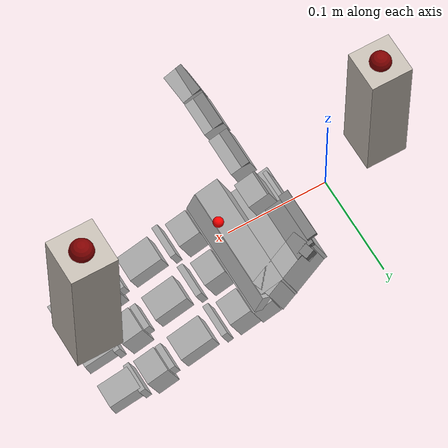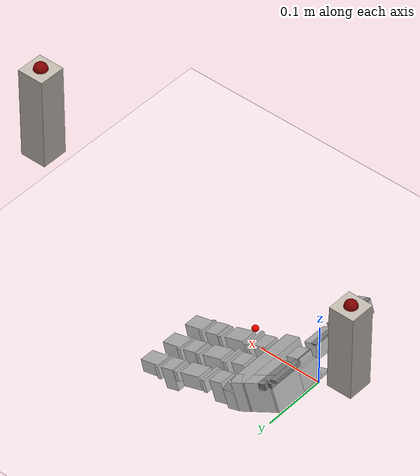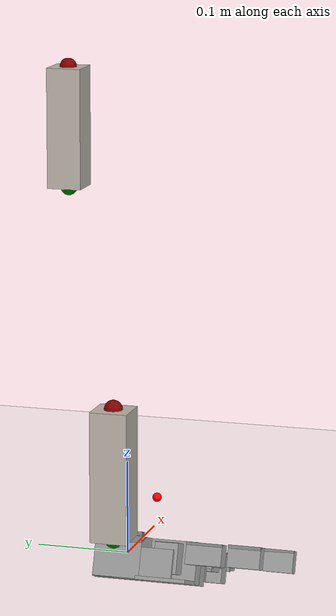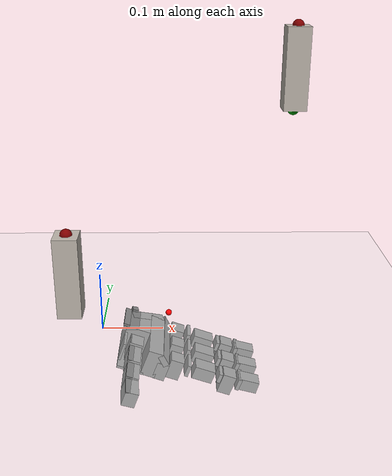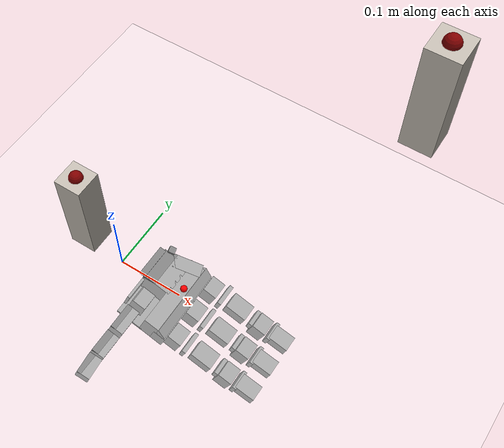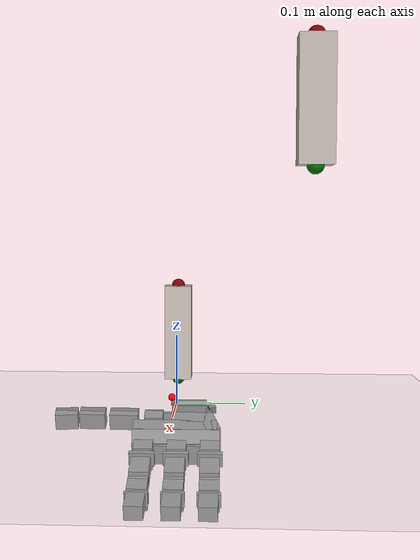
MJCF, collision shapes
<mujoco model="leap_scene">
  <include file="leap_rh_mjx.xml"/>
  <include file="../screw_driver/screw_driver.xml"/>

  <statistic center="0.15 0 0" extent="0.4" meansize="0.01"/>
  <size nuserdata="1"/>

  <visual>
    <headlight diffuse=".8 .8 .8" ambient=".2 .2 .2" specular="1 1 1"/>
    <rgba force="1 0 0 1"/>
    <global azimuth="120" elevation="-20"/>
    <map force="0.01" stiffness="500"/>
    <scale forcewidth="0.1" contactwidth="0.5" contactheight="0.2"/>
    <quality shadowsize="8192"/>
  </visual>

  <asset>
    <texture type="skybox" builtin="gradient" rgb1="1 1 1" rgb2="1 1 1" width="800" height="800"/>
    <texture type="2d" name="groundplane" builtin="checker" mark="edge" rgb1="1 1 1" rgb2="1 1 1" markrgb="0 0 0"
             width="300" height="300"/>
    <material name="groundplane" texture="groundplane" texuniform="true" texrepeat="5 5" reflectance="0"/>
  </asset>

  <default>
    <default class="screw_driver">
      <geom friction="0.3 0.05 0.01" conaffinity="2"/>
    </default>
  </default>

  <worldbody>
    <camera name="side" pos="-0.183 0.396 0.296" xyaxes="-0.783 -0.622 -0.000 0.332 -0.419 0.845"/>
    <geom name="floor" pos="0 0 0" size="0 0 0.01" type="plane" material="groundplane" contype="1" conaffinity="1"/>
    <body name="target" mocap="true" pos="0.325 0.17 0.4">
      <geom type="box" size=".02 .02 .07" mass=".108" material="oriented_screw_driver" contype="0" conaffinity="0"
            group="2"/>
      <site name="target_head_a" rgba="0.5 0 0 1" type="sphere" size="0.01" pos="0 0 0.07"/>
      <site name="target_head_b" rgba="0 0.5 0 1" type="sphere" size="0.01" pos="0 0 -0.07"/>
    </body>
  </worldbody>

  <sensor>
    <!-- screw_driver. -->
    <framepos name="screw_driver_position" objtype="body" objname="screw_driver"/>
    <contact name="screw_driver_contact_with_palm" geom1="screw_driver" geom2="palm_visual" data="found force"/>
    <contact name="screw_driver_contact_with_th_tip" geom1="screw_driver" geom2="th_tip" data="found force"/>
    <contact name="screw_driver_contact_with_if_tip" geom1="screw_driver" geom2="if_tip" data="found force"/>
    <contact name="screw_driver_contact_with_mf_tip" geom1="screw_driver" geom2="mf_tip" data="found force"/>
    <contact name="screw_driver_contact_with_rf_tip" geom1="screw_driver" geom2="rf_tip" data="found force"/>
    <framepos name="screw_driver_distance_to_grasp" objtype="body" objname="screw_driver" reftype="site"
              refname="grasp_site"/>
    <framepos name="screw_driver_distance_to_target" objtype="body" objname="screw_driver" reftype="body"
              refname="target"/>
    <framequat name="screw_driver_orientation" objtype="body" objname="screw_driver"/>
    <framequat name="screw_driver_orientation_from_target" objtype="body" objname="screw_driver" reftype="body"
               refname="target"/>
    <framepos name="grasp_distance_from_target" objtype="site" objname="grasp_site" reftype="body" refname="target"/>
    <framelinvel name="screw_driver_linear_vel" objtype="body" objname="screw_driver"/>
    <frameangvel name="screw_driver_angular_vel" objtype="body" objname="screw_driver"/>
    <frameangacc name="screw_driver_angular_acc" objtype="body" objname="screw_driver"/>
    <framezaxis name="screw_driver_upvector" objtype="body" objname="screw_driver"/>

    <framepos name="screw_driver_head_distance_to_target_head_a" objtype="site" objname="screw_driver_head_a"
              reftype="site" refname="target_head_a"/>

    <!-- hand. -->
    <framepos name="palm_position" objtype="site" objname="grasp_site"/>
    <framepos name="th_tip_distance_to_screw_driver" objtype="site" objname="th_tip" reftype="body"
              refname="screw_driver"/>
    <framepos name="if_tip_distance_to_screw_driver" objtype="site" objname="if_tip" reftype="body"
              refname="screw_driver"/>
    <framepos name="mf_tip_distance_to_screw_driver" objtype="site" objname="mf_tip" reftype="body"
              refname="screw_driver"/>
    <framepos name="rf_tip_distance_to_screw_driver" objtype="site" objname="rf_tip" reftype="body"
              refname="screw_driver"/>

    <!-- goal. -->
    <framequat name="screw_driver_goal_orientation" objtype="body" objname="target"/>
    <framezaxis name="screw_driver_goal_upvector" objtype="body" objname="target"/>
  </sensor>

</mujoco>

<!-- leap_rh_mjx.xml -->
<mujoco model="leap_rh_mjx">
  <compiler angle="radian" autolimits="true" assetdir="assets"/>

  <option timestep="0.01" integrator="Euler" iterations="5" ls_iterations="8">
    <flag eulerdamp="disable"/>
  </option>

  <custom>
    <numeric data="30" name="max_contact_points"/>
    <numeric data="12" name="max_geom_pairs"/>
  </custom>

  <asset>
    <material name="black" rgba="0.2 0.2 0.2 1"/>
    <material name="gray" rgba="0.5 0.5 0.5 1"/>
    <mesh name="leap_mount" file="leap_mount.obj"/>

    <mesh name="palm" file="palm_right.obj"/>
    <mesh name="base" file="base.obj"/>
    <mesh name="proximal" file="proximal.obj"/>
    <mesh name="medial" file="medial.obj"/>
    <mesh name="distal" file="distal.obj"/>
    <mesh name="tip" file="tip.obj"/>
    <mesh name="thumb_base" file="thumb_base.obj"/>
    <mesh name="thumb_proximal" file="thumb_proximal.obj"/>
    <mesh name="thumb_distal" file="thumb_distal.obj"/>
    <mesh name="thumb_tip" file="thumb_tip.obj"/>
  </asset>

  <default>
    <default class="leap_rh">
      <geom group="3" friction="0.2" solref="0.02 1.5" solimp="0.9 0.99 0.001"/>
      <default class="visual">
        <geom group="2" type="mesh" contype="0" conaffinity="0" density="0" material="black"/>
      </default>
      <default class="tip">
        <geom size="0.01 0.012 0.016" pos="-0.0012969 -0.0335524 0.0145207"
              quat="0.703552 0.709596 -0.0292107 -0.0252203" type="box" friction="0.7 0.05 0.0002"
              rgba=".5 .5 .5 .3"/>
      </default>
      <default class="thumb_tip">
        <geom size="0.01 0.012 0.016" pos="-0.00127744 -0.0455619 -0.0144774"
              quat="0.708101 0.705072 -0.0294902 -0.024426" type="box" friction="0.7 0.05 0.0002"
              rgba=".5 .5 .5 .3"/>
      </default>

      <position kp="3.0" inheritrange="1"/>
      <!-- armature = rotor inertia * gear ratio^2 = 1.7 * 1e-8 * 288*288 = 0.00149376 -->
      <!-- max torque = 0.2196 = 600/1000*0.366 -->
      <!-- frictionloss = rough guess, small ish value -->
      <joint axis="0 0 -1" damping="0.2" armature="0.00149376" actuatorfrcrange="-0.2196 0.2196"
             frictionloss="0.02"/>

      <default class="mcp">
        <joint range="-0.314 2.23"/>
      </default>
      <default class="rot">
        <joint range="-1.047 1.047"/>
      </default>
      <default class="pip">
        <joint range="-0.506 1.885"/>
      </default>
      <default class="dip">
        <joint range="-0.366 2.042"/>
      </default>
      <default class="thumb_cmc">
        <joint range="-0.349 2.094"/>
      </default>
      <default class="thumb_axl">
        <joint range="-0.349 2.094"/>
      </default>
      <default class="thumb_mcp">
        <joint range="-0.47 2.443"/>
      </default>
      <default class="thumb_ipl">
        <joint range="-1.34 1.88"/>
      </default>

    </default>
  </default>

  <contact>
    <!-- filter the palm from all other finger bodies except the tips -->
    <exclude body1="palm" body2="if_bs"/>
    <exclude body1="palm" body2="mf_bs"/>
    <exclude body1="palm" body2="rf_bs"/>
    <exclude body1="palm" body2="th_mp"/>

    <exclude body1="palm" body2="if_px"/>
    <exclude body1="palm" body2="mf_px"/>
    <exclude body1="palm" body2="rf_px"/>
    <exclude body1="palm" body2="th_bs"/>

    <exclude body1="palm" body2="if_md"/>
    <exclude body1="palm" body2="mf_md"/>
    <exclude body1="palm" body2="rf_md"/>
    <exclude body1="palm" body2="th_px"/>

    <!-- filter the mount from all finger bodies except the tips -->
    <exclude body1="leap_mount" body2="if_bs"/>
    <exclude body1="leap_mount" body2="mf_bs"/>
    <exclude body1="leap_mount" body2="rf_bs"/>
    <exclude body1="leap_mount" body2="th_mp"/>

    <exclude body1="leap_mount" body2="if_px"/>
    <exclude body1="leap_mount" body2="mf_px"/>
    <exclude body1="leap_mount" body2="rf_px"/>
    <exclude body1="leap_mount" body2="th_bs"/>

    <exclude body1="leap_mount" body2="if_md"/>
    <exclude body1="leap_mount" body2="mf_md"/>
    <exclude body1="leap_mount" body2="rf_md"/>
    <exclude body1="leap_mount" body2="th_px"/>

    <!-- none of the base fingertip geoms can touch each other -->
    <exclude body1="if_bs" body2="mf_bs"/>
    <exclude body1="if_bs" body2="rf_bs"/>
    <exclude body1="mf_bs" body2="rf_bs"/>

    <exclude body1="th_mp" body2="if_bs"/>
    <exclude body1="th_mp" body2="mf_bs"/>
    <exclude body1="th_mp" body2="rf_bs"/>
  </contact>

  <worldbody>
    <light name="spotlight" mode="targetbodycom" target="palm" pos="3 0 4"/>
    <body name="leap_mount" pos="0 0 0" quat="1 0 0 0" childclass="leap_rh">
      <geom name="leap_mount_visual" pos="0 0 0" quat="1 0 0 0" class="visual" mesh="leap_mount"/>
      <geom name="leap_mount_collision_0" size="0.002 0.025 0.005" pos="0.0405 0.02 0.009"
            quat="0.57346234 0 0.81923192 0" type="box"/>
      <geom name="leap_mount_collision_1" size="0.005 0.005 0.005" pos="0.05 0.053 0.002"
            quat="0.4987168 0.64994038 -0.34910175 0.45495826" type="box"/>
      <site name="grasp_site" pos="0.11 0.0 0.03" rgba="1 0 0 1"/>
      <body name="palm" pos="0.124 -0.0305 -0.06045" quat="0 1 0 -0.175">
        <inertial pos="-0.049542 -0.042914 -0.010227" quat="0.565586 0.427629 -0.574956 0.408254" mass="0.237"
                  diaginertia="0.000407345 0.000304759 0.000180736"/>
        <geom name="palm_visual" pos="-0.02 0.02575 -0.0347" quat="1 0 0 0" class="visual" mesh="palm"/>
        <geom name="palm_collision_1" size="0.011 0.013 0.017" pos="-0.009 0.008 -0.011" type="box"/>
        <geom name="palm_collision_2" size="0.011 0.013 0.017" pos="-0.009 -0.037 -0.011" type="box"/>
        <geom name="palm_collision_3" size="0.011 0.013 0.017" pos="-0.009 -0.082 -0.011" type="box"/>
        <geom name="palm_collision_4" size="0.029 0.01 0.023" pos="-0.066 -0.078 -0.0115"
              quat="0.989016 0 0 -0.147806" type="box"/>
        <geom name="palm_collision_5" size="0.01 0.06 0.015" pos="-0.03 -0.035 -0.003" type="box"/>
        <geom name="palm_collision_6" size="0.005 0.06 0.01" pos="-0.032 -0.035 -0.024"
              quat="0.923956 0 0.382499 0" type="box"/>
        <geom name="palm_collision_7" size="0.012 0.058 0.023" pos="-0.048 -0.033 -0.0115" type="box"/>
        <geom name="palm_collision_8" size="0.022 0.026 0.023" pos="-0.078 -0.053 -0.0115" type="box"/>
        <geom name="palm_collision_9" size="0.002 0.018 0.017" pos="-0.098 -0.009 -0.006" type="box"/>
        <geom name="palm_collision_10" size="0.022 0.028 0.002" pos="-0.078 -0.003 0.01" type="box"/>
        <body name="if_bs" pos="-0.007 0.023 -0.0187" quat="0.5 0.5 0.5 -0.5">
          <inertial pos="-0.022516 0.033882 0.016359" quat="0.388092 0.677951 -0.247713 0.573067" mass="0.044"
                    diaginertia="1.74972e-05 1.61504e-05 7.21342e-06"/>
          <joint name="if_mcp" class="mcp"/>
          <geom name="if_bs_visual" pos="0.0084 0.0077 0.01465" quat="1 0 0 0" class="visual" mesh="base"/>
          <geom name="if_bs_collision" size="0.01 0.003 0.017" pos="0 0.018 0.0147" type="box"/>
          <body name="if_px" pos="-0.0122 0.0381 0.0145" quat="0.500003 -0.5 -0.499997 0.5">
            <inertial pos="0.0075 -0.0002 -0.011" quat="0 0.707107 0 0.707107" mass="0.032"
                      diaginertia="4.8853e-06 4.3733e-06 3.0933e-06"/>
            <joint name="if_rot" class="rot"/>
            <geom name="if_px_visual" pos="0.0096 0.0002 0.0007" quat="0.500003 -0.5 -0.5 -0.499997"
                  class="visual"
                  mesh="proximal"/>
            <geom name="if_px_collision" size="0.017 0.013 0.011" pos="0.0075 -0.0002 -0.011" type="box"/>

            <body name="if_md" pos="0.015 0.0143 -0.013" quat="0.500003 0.5 -0.5 0.499997">
              <inertial pos="0.0054215 -0.029148 0.015" quat="0.687228 0.687228 0.166487 0.166487"
                        mass="0.037"
                        diaginertia="8.28004e-06 8.1598e-06 5.39516e-06"/>
              <joint name="if_pip" class="pip"/>
              <geom name="if_md_visual" pos="0.0211 -0.0084 0.0097" quat="2.67949e-08 -1 0 0"
                    class="visual"
                    mesh="medial"/>
              <geom name="if_md_collision_1" size="0.008 0.003 0.013" pos="0 -0.02 0.015" type="box"/>
              <geom name="if_md_collision_2" size="0.017 0.011 0.013" pos="0.0075 -0.035 0.015"
                    type="box"/>
              <body name="if_ds" pos="0 -0.0361 0.0002">
                <inertial pos="-0.0008794 -0.027019 0.014594"
                          quat="0.702905 0.710643 -0.0212937 -0.0214203"
                          mass="0.016" diaginertia="3.71863e-06 3.02396e-06 1.6518e-06"/>
                <joint name="if_dip" class="dip"/>
                <geom name="if_ds_visual" pos="0.0132 -0.0061 0.0144" quat="2.67949e-08 1 0 0"
                      class="visual"
                      mesh="distal"/>
                <geom name="if_ds_collision" size="0.01 0.003 0.015" pos="0 -0.017 0.015" type="box"/>
                <geom name="if_tip" class="tip"/>
                <geom type="mesh" mesh="tip" class="visual" material="gray"/>
                <site name="if_tip" pos="0 -0.05 0.015" group="4"/>
              </body>
            </body>
          </body>
        </body>
        <body name="mf_bs" pos="-0.0071 -0.0224 -0.0187" quat="0.500003 0.5 0.5 -0.499997">
          <inertial pos="-0.022516 0.033882 0.016359" quat="0.388092 0.677951 -0.247713 0.573067" mass="0.044"
                    diaginertia="1.74972e-05 1.61504e-05 7.21342e-06"/>
          <joint name="mf_mcp" class="mcp"/>
          <geom name="mf_bs_visual" pos="0.0084 0.0077 0.01465" quat="1 0 0 0" class="visual" mesh="base"/>
          <geom name="mf_bs_collision" size="0.01 0.003 0.017" pos="0 0.018 0.0147" type="box"/>
          <body name="mf_px" pos="-0.0122 0.0381 0.0145" quat="0.500003 -0.5 -0.499997 0.5">
            <inertial pos="0.0075 -0.0002 -0.011" quat="0 0.707107 0 0.707107" mass="0.032"
                      diaginertia="4.8853e-06 4.3733e-06 3.0933e-06"/>
            <joint name="mf_rot" class="rot"/>
            <geom name="mf_px_visual" pos="0.0096 0.0003 0.0007" quat="0.500003 -0.5 -0.5 -0.499997"
                  class="visual"
                  mesh="proximal"/>
            <geom name="mf_px_collision" size="0.017 0.013 0.011" pos="0.0075 -0.0002 -0.011" type="box"/>
            <body name="mf_md" pos="0.015 0.0143 -0.013" quat="0.500003 0.5 -0.5 0.499997">
              <inertial pos="0.0054215 -0.029148 0.015" quat="0.687228 0.687228 0.166487 0.166487"
                        mass="0.037"
                        diaginertia="8.28004e-06 8.1598e-06 5.39516e-06"/>
              <joint name="mf_pip" class="pip"/>
              <geom name="mf_md_visual" pos="0.0211 -0.0084 0.0097" quat="1.32679e-06 -1 0 0"
                    class="visual"
                    mesh="medial"/>
              <geom name="mf_md_collision_1" size="0.008 0.003 0.013" pos="0 -0.02 0.015" type="box"/>
              <geom name="mf_md_collision_2" size="0.017 0.011 0.013" pos="0.0075 -0.035 0.015"
                    type="box"/>
              <body name="mf_ds" pos="0 -0.0361 0.0002">
                <inertial pos="-0.0008794 -0.027019 0.014594"
                          quat="0.702905 0.710643 -0.0212937 -0.0214203"
                          mass="0.016" diaginertia="3.71863e-06 3.02396e-06 1.6518e-06"/>
                <joint name="mf_dip" class="dip"/>
                <geom name="mf_ds_visual" pos="0.0132 -0.0061 0.0145" quat="1.32679e-06 1 0 0"
                      class="visual"
                      mesh="distal"/>
                <geom name="mf_ds_collision" size="0.01 0.003 0.015" pos="0 -0.017 0.015" type="box"/>
                <geom name="mf_tip" class="tip"/>
                <geom type="mesh" mesh="tip" class="visual" material="gray"/>
                <site name="mf_tip" pos="0 -0.05 0.015" group="4"/>
              </body>
            </body>
          </body>
        </body>
        <body name="rf_bs" pos="-0.00709 -0.0678 -0.0187" quat="0.500003 0.5 0.5 -0.499997">
          <inertial pos="-0.022516 0.033882 0.016359" quat="0.388092 0.677951 -0.247713 0.573067" mass="0.044"
                    diaginertia="1.74972e-05 1.61504e-05 7.21342e-06"/>
          <joint name="rf_mcp" class="mcp"/>
          <geom name="rf_bs_visual" pos="0.0084 0.0077 0.01465" quat="1 0 0 0" class="visual" mesh="base"/>
          <geom name="rf_bs_collision" size="0.01 0.003 0.017" pos="0 0.018 0.0147" type="box"/>
          <body name="rf_px" pos="-0.0122 0.0381 0.0145" quat="0.500003 -0.5 -0.499997 0.5">
            <inertial pos="0.0075 -0.0002 -0.011" quat="0 0.707107 0 0.707107" mass="0.032"
                      diaginertia="4.8853e-06 4.3733e-06 3.0933e-06"/>
            <joint name="rf_rot" class="rot"/>
            <geom name="rf_px_visual" pos="0.0096 0.0003 0.0007" quat="0.500003 -0.5 -0.5 -0.499997"
                  class="visual"
                  mesh="proximal"/>
            <geom name="rf_px_collision" size="0.017 0.013 0.011" pos="0.0075 -0.0002 -0.011" type="box"/>
            <body name="rf_md" pos="0.015 0.0143 -0.013" quat="0.500003 0.5 -0.5 0.499997">
              <inertial pos="0.0054215 -0.029148 0.015" quat="0.687228 0.687228 0.166487 0.166487"
                        mass="0.037"
                        diaginertia="8.28004e-06 8.1598e-06 5.39516e-06"/>
              <joint name="rf_pip" class="pip"/>
              <geom name="rf_md_visual" pos="0.0211 -0.0084 0.0097" quat="0 -1 0 0" class="visual"
                    mesh="medial"/>
              <geom name="rf_md_collision_1" size="0.008 0.003 0.013" pos="0 -0.02 0.015" type="box"/>
              <geom name="rf_md_collision_2" size="0.017 0.011 0.013" pos="0.0075 -0.035 0.015"
                    type="box"/>
              <body name="rf_ds" pos="0 -0.03609 0.0002">
                <inertial pos="-0.0008794 -0.027019 0.014594"
                          quat="0.702905 0.710643 -0.0212937 -0.0214203"
                          mass="0.016" diaginertia="3.71863e-06 3.02396e-06 1.6518e-06"/>
                <joint name="rf_dip" class="dip"/>
                <geom name="rf_ds_visual" pos="0.0132 -0.0061 0.0145" quat="0 1 0 0" class="visual"
                      mesh="distal"/>
                <geom name="rf_ds_collision" size="0.01 0.003 0.015" pos="0 -0.017 0.015" type="box"/>
                <geom name="rf_tip" class="tip"/>
                <geom type="mesh" mesh="tip" class="visual" material="gray"/>
                <site name="rf_tip" pos="0 -0.05 0.015" group="4"/>
              </body>
            </body>
          </body>
        </body>
        <body name="th_mp" pos="-0.0693 -0.0012 -0.0216" quat="0.707109 0 0.707105 0">
          <inertial pos="0.0075 -0.0002 -0.011" quat="0 0.707107 0 0.707107" mass="0.032"
                    diaginertia="4.8853e-06 4.3733e-06 3.0933e-06"/>
          <joint name="th_cmc" class="thumb_cmc"/>
          <geom name="th_mp_visual" pos="-0.0053 0.0003 0.00078" quat="0.500003 -0.5 -0.5 -0.499997"
                class="visual"
                mesh="proximal"/>
          <geom name="th_mp_collision" size="0.017 0.013 0.011" pos="-0.0075 -0.0002 -0.011" type="box"/>
          <body name="th_bs" pos="0 0.0143 -0.013" quat="0.500003 0.5 -0.5 0.499997">
            <inertial pos="0 0 -0.0070806" quat="0.707107 0.707107 0 0" mass="0.003"
                      diaginertia="6.1932e-07 5.351e-07 2.1516e-07"/>
            <joint name="th_axl" class="thumb_axl"/>
            <geom name="th_bs_visual" pos="0.01196 0 -0.0158" quat="0.707109 0.707105 0 0" class="visual"
                  mesh="thumb_base"/>
            <body name="th_px" pos="0 0.0145 -0.017" quat="0.707109 -0.707105 0 0">
              <inertial pos="-0.0020593 0.015912 -0.013733" quat="0.698518 0.697382 -0.104933 0.121324"
                        mass="0.038"
                        diaginertia="9.87104e-06 9.32653e-06 4.36203e-06"/>
              <joint name="th_mcp" class="thumb_mcp"/>
              <geom name="th_px_visual" pos="0.0439 0.0579 -0.0086" quat="1 0 0 0" class="visual"
                    mesh="thumb_proximal"/>
              <geom name="th_px_collision" size="0.01 0.02 0.012" pos="0 0.0105 -0.014" type="box"/>
              <body name="th_ds" pos="0 0.0466 0.0002" quat="1.32679e-06 0 0 1">
                <inertial pos="0.00096191 -0.024203 -0.014419"
                          quat="0.35287 0.311272 -0.632839 0.614904" mass="0.049"
                          diaginertia="2.08591e-05 2.0402e-05 4.71335e-06"/>
                <joint name="th_ipl" class="thumb_ipl"/>
                <geom name="th_ds_visual" pos="0.0625 0.0784 0.0489" quat="1 0 0 0" class="visual"
                      mesh="thumb_distal"/>
                <geom name="th_ds_collision" size="0.01 0.018 0.012" pos="0 -0.0085 -0.015"
                      type="box"/>
                <geom name="th_tip" class="thumb_tip"/>
                <site name="th_tip" pos="0 -0.06 -0.015" group="4"/>
                <geom type="mesh" mesh="thumb_tip" class="visual" material="gray"/>
              </body>
            </body>
          </body>
        </body>
      </body>
    </body>
  </worldbody>

  <actuator>
    <position name="if_mcp_act" joint="if_mcp" class="mcp"/>
    <position name="if_rot_act" joint="if_rot" class="rot"/>
    <position name="if_pip_act" joint="if_pip" class="pip"/>
    <position name="if_dip_act" joint="if_dip" class="dip"/>
    <position name="mf_mcp_act" joint="mf_mcp" class="mcp"/>
    <position name="mf_rot_act" joint="mf_rot" class="rot"/>
    <position name="mf_pip_act" joint="mf_pip" class="pip"/>
    <position name="mf_dip_act" joint="mf_dip" class="dip"/>
    <position name="rf_mcp_act" joint="rf_mcp" class="mcp"/>
    <position name="rf_rot_act" joint="rf_rot" class="rot"/>
    <position name="rf_pip_act" joint="rf_pip" class="pip"/>
    <position name="rf_dip_act" joint="rf_dip" class="dip"/>
    <position name="th_cmc_act" joint="th_cmc" class="thumb_cmc"/>
    <position name="th_axl_act" joint="th_axl" class="thumb_axl"/>
    <position name="th_mcp_act" joint="th_mcp" class="thumb_mcp"/>
    <position name="th_ipl_act" joint="th_ipl" class="thumb_ipl"/>
  </actuator>
</mujoco>

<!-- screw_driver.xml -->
<mujoco>
    <asset>
        <texture name="oriented_screw_driver" type="cube"
                 fileup="../cube/reorientation_cube_textures/fileup.png"
                 fileback="../cube/reorientation_cube_textures/fileback.png"
                 filedown="../cube/reorientation_cube_textures/filedown.png"
                 filefront="../cube/reorientation_cube_textures/filefront.png"
                 fileleft="../cube/reorientation_cube_textures/fileleft.png"
                 fileright="../cube/reorientation_cube_textures/fileright.png"/>
        <material name="oriented_screw_driver" texture="oriented_screw_driver"/>
        <texture name="gray_screw_driver" type="cube"
                 fileup="../cube/reorientation_cube_textures/grayup.png"
                 fileback="../cube/reorientation_cube_textures/grayback.png"
                 filedown="../cube/reorientation_cube_textures/graydown.png"
                 filefront="../cube/reorientation_cube_textures/grayfront.png"
                 fileleft="../cube/reorientation_cube_textures/grayleft.png"
                 fileright="../cube/reorientation_cube_textures/grayright.png"/>
        <material name="gray_screw_driver" texture="gray_screw_driver"/>
    </asset>
    <worldbody>
        <light pos="0 0 1"/>
        <body name="screw_driver" pos="-0.05 0 0.1" quat="1 0 0 0">
            <joint name="Rz" pos="0 0 0" axis="0 0 1" type="hinge" range="-1000.57 1000.57" damping="0.01"
                   armature="0.01"/>
            <geom name="screw_driver" type="box" size=".02 .02 .07" material="oriented_screw_driver"
                  friction="0.3 0.05 0.01"
                  conaffinity="2"/>
            <site name="screw_driver"/>
            <site name="screw_driver_head_a" rgba="0.5 0 0 1" type="sphere" size="0.01" pos="0 0 0.07" />
            <site name="screw_driver_head_b" rgba="0 0.5 0 1" type="sphere" size="0.01" pos="0 0 -0.07" />
        </body>
    </worldbody>
</mujoco>
